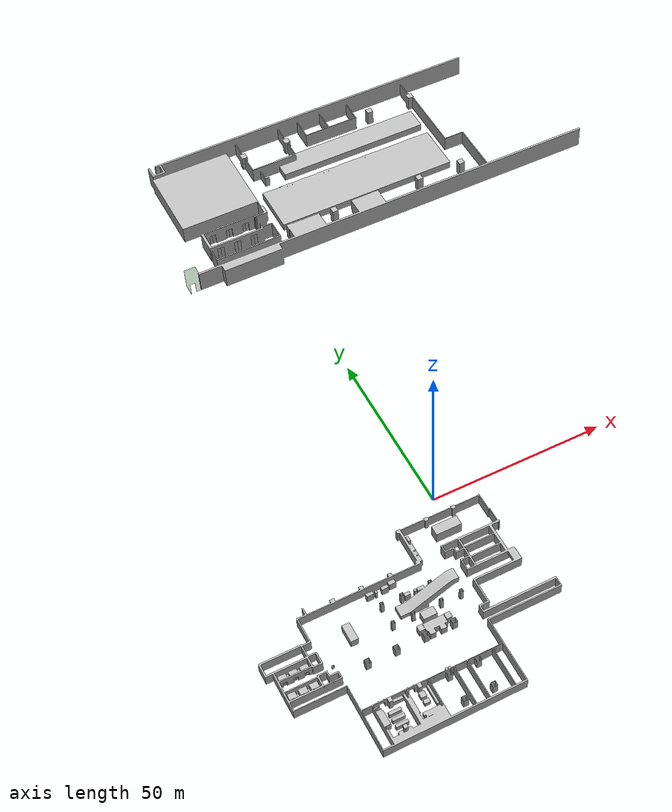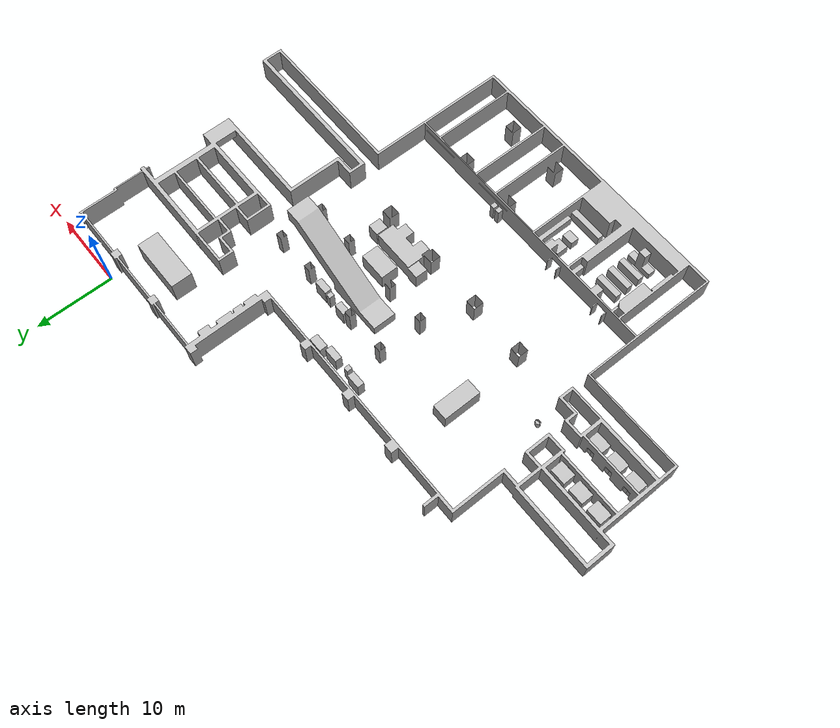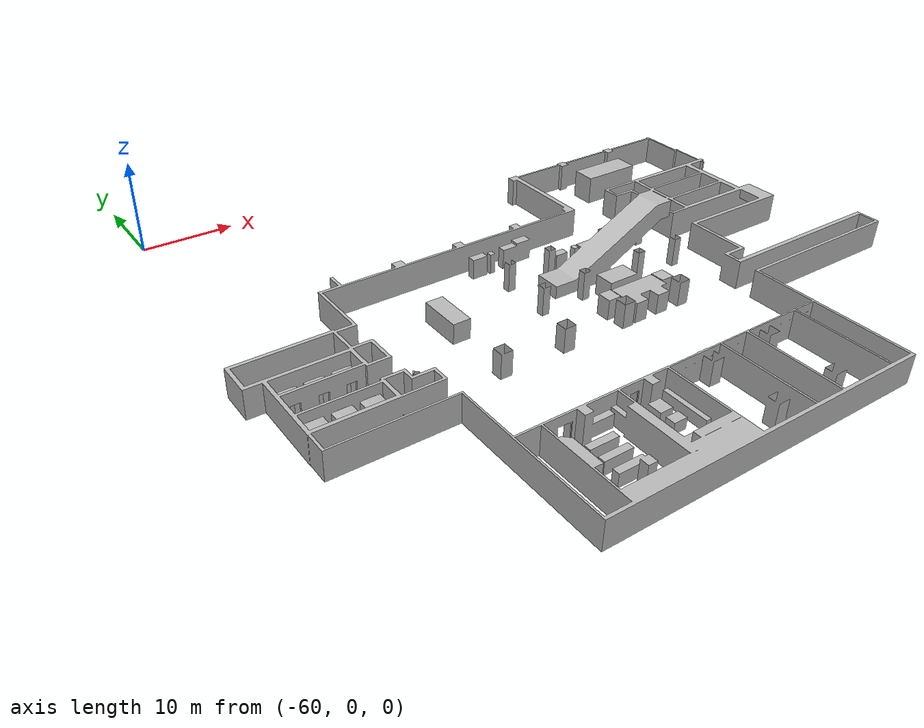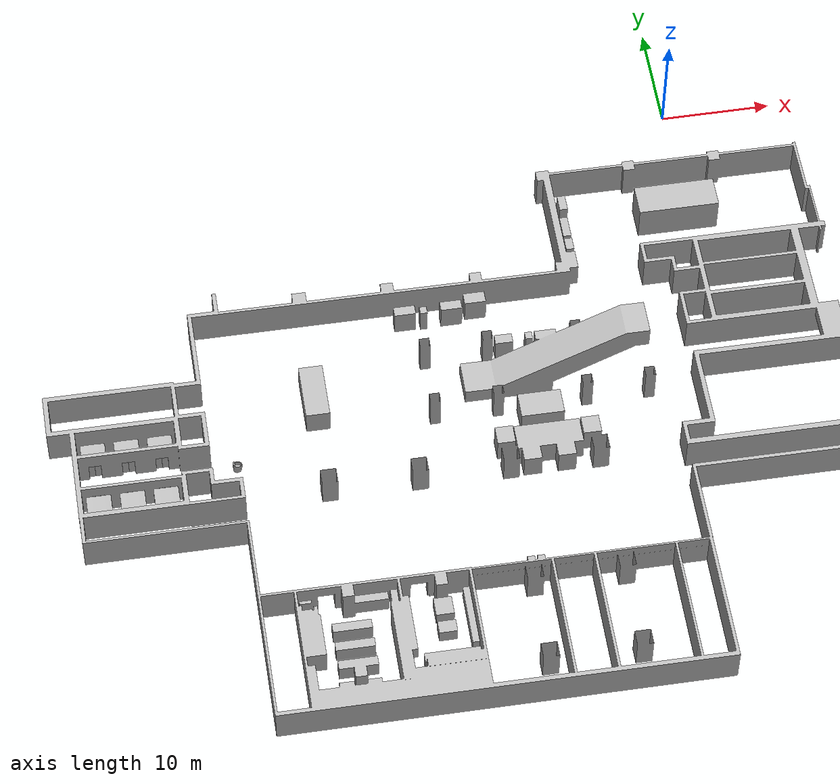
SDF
<?xml version="1.0" ?>
<sdf version="1.6">
<world name="lg_seocho_world">
  <gui>
    <camera name="user_camera">
      <pose>-47.37 -29.29 -4.5 0 0.523 0</pose>
    </camera>
  </gui>

  <spherical_coordinates>
    <surface_model>EARTH_WGS84</surface_model>
    <world_frame_orientation>ENU</world_frame_orientation>
    <latitude_deg>37.46105</latitude_deg>
    <longitude_deg>127.03418</longitude_deg>
    <elevation>40</elevation>
    <heading_deg>-47</heading_deg>
  </spherical_coordinates>

  <light name='sun' type='directional'>
    <cast_shadows>1</cast_shadows>
    <pose>0 0 500 0 -0 0</pose>
    <diffuse>0.9528302 0.9528302 0.9528302 1</diffuse>
    <direction>0 0 -1</direction>
  </light>

  <include>
    <uri>model://map_lg_seocho</uri>
  </include>

  <include>
    <name>cloi1</name>
    <uri>model://CLOi_porter</uri>
    <pose>-43.81 -28.77 -6.546 0 0 3.14</pose>
  </include>

</world>
</sdf>

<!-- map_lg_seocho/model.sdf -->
<sdf version="1.6">
<model name="SeochoTower">
  <static>true</static>

  <include>
    <name>B1F</name>
    <uri>model://seocho_B1F</uri>
  </include>

  <include>
    <name>25F</name>
    <uri>model://seocho_25F</uri>
  </include>

  <include>
    <name>Elevator_00</name>
    <pose>-50.38048 -26.93626 -6.61037 0 0 0</pose>
    <uri>model://seocho_EV</uri>
  </include>

  <include>
    <name>Elevator_01</name>
    <pose>-53.36258 -26.93626 -6.61037 0 0 0</pose>
    <uri>model://seocho_EV</uri>
  </include>

  <include>
    <name>Elevator_02</name>
    <pose>-56.34855 -26.93626 -6.61037 0 0 0</pose>
    <uri>model://seocho_EV</uri>
  </include>

  <include>
    <name>Elevator_03</name>
    <pose>-50.37298 -31.54849 -6.61037 0 0 -3.140000</pose>
    <uri>model://seocho_EV</uri>
  </include>

  <include>
    <name>Elevator_04</name>
    <pose>-53.35443 -31.54849 -6.61037 0 0 -3.140000</pose>
    <uri>model://seocho_EV</uri>
  </include>

  <include>
    <name>Elevator_05</name>
    <pose>-56.34433 -31.54849 -6.61037 0 0 -3.140000</pose>
    <uri>model://seocho_EV</uri>
  </include>

  <plugin name="ElevatorSystem" filename="libElevatorSystem.so">
    <system_name>ElevatorSystem_00</system_name>
    <elevator prefix_name="Elevator_" speed="30">
      <floor>floor_collision</floor>
      <doors speed="0.6" closing_timer="7.0">
        <inside open_offset="0.567">
          <door name="left">seocho_EV_door_L_link</door>
          <door name="right">seocho_EV_door_R_link</door>
        </inside>
        <outside open_offset="0.567">
          <door name="left">seocho_EV_out_doors_L_link</door>
          <door name="right">seocho_EV_out_doors_R_link</door>
        </outside>
      </doors>
    </elevator>
    <floors>
      <floor>
        <name>B1F</name>
        <height>-6.61037</height>
      </floor>
      <floor>
        <name>25F</name>
        <height>150.13362</height>
      </floor>
    </floors>
  </plugin>
</model>
</sdf>

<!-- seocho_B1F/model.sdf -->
<sdf version='1.6'>
<model name='seocho_B1F'>
  <static>1</static>
  <allow_auto_disable>1</allow_auto_disable>
  <link name='B1_body_link'>
    <collision name='collision'>
      <geometry>
        <mesh>
          <scale>0.1 0.1 0.1</scale>
          <uri>model://seocho_B1F/meshes/B1_collision.obj</uri>
        </mesh>
      </geometry>
    </collision>
      <collision name='floor_collision'>
        <geometry>
          <mesh>
            <scale>0.1 0.1 0.1</scale>
            <uri>model://seocho_B1F/meshes/B1_bottom_col.obj</uri>
          </mesh>
        </geometry>
        <surface>
          <friction>
            <ode>
              <mu>1</mu>
              <mu2>1</mu2>
              <fdir1>0 0 1</fdir1>
              <slip1>0.0</slip1>
              <slip2>0.0</slip2>
            </ode>
          </friction>
        </surface>
      </collision>
    <visual name='visual'>
      <geometry>
        <mesh>
          <scale>0.1 0.1 0.1</scale>
          <uri>model://seocho_B1F/meshes/B1_base.obj</uri>
        </mesh>
      </geometry>
      <material>
        <emissive>0.005 0.005 0.005 1</emissive>
      </material>
      <cast_shadows>0</cast_shadows>
    </visual>
  </link>
  <link name='seocho25_glass_link'>
    <visual name='visual'>
      <geometry>
        <mesh>
          <scale>0.1 0.1 0.1</scale>
          <uri>model://seocho_B1F/meshes/B1_glass.obj</uri>
        </mesh>
      </geometry>
      <material>
        <diffuse>0 0.4 0 0.3</diffuse>
      </material>
      <cast_shadows>0</cast_shadows>
    </visual>
  </link>

  <include>
    <name>EV_1_outside_door</name>
    <pose>-50.3762 -27.43527 -6.61125 0 0 0</pose>
    <uri>model://seocho_EV_out_doors</uri>
  </include>

  <include>
    <name>EV_2_outside_door</name>
    <pose>-53.3583 -27.43527 -6.61125 0 0 0</pose>
    <uri>model://seocho_EV_out_doors</uri>
  </include>

  <include>
    <name>EV_3_outside_door</name>
    <pose>-56.34427 -27.43527 -6.61125 0 0 0</pose>
    <uri>model://seocho_EV_out_doors</uri>
  </include>

  <include>
    <name>EV_4_outside_door</name>
    <pose>-50.377726 -31.04938 -6.61125 0 0 -3.140000</pose>
    <uri>model://seocho_EV_out_doors</uri>
  </include>

  <include>
    <name>EV_5_outside_door</name>
    <pose>-53.35871 -31.04938 -6.61125 0 0 -3.140000</pose>
    <uri>model://seocho_EV_out_doors</uri>
  </include>

  <include>
    <name>EV_6_outside_door</name>
    <pose>-56.34862 -31.04938 -6.61125 0 0 -3.140000</pose>
    <uri>model://seocho_EV_out_doors</uri>
  </include>

</model>
</sdf>

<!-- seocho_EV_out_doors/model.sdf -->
<sdf version='1.6'>
<model name='seocho_EV_out_doors'>
  <static>1</static>
  <allow_auto_disable>1</allow_auto_disable>
  <link name='seocho_EV_out_doors_L_link'>
    <collision name='collision'>
      <geometry>
        <mesh>
          <scale>0.1 0.1 0.1</scale>
          <uri>model://seocho_EV_out_doors/meshes/B1_EV_door_L_out_col.obj</uri>
        </mesh>
      </geometry>
    </collision>
    <visual name='visual'>
      <geometry>
        <mesh>
          <scale>0.1 0.1 0.1</scale>
          <uri>model://seocho_EV_out_doors/meshes/B1_EV_door_L_out.obj</uri>
        </mesh>
      </geometry>
      <material>
        <emissive>0.02 0.02 0.02 1</emissive>
      </material>
    </visual>
  </link>
  <link name='seocho_EV_out_doors_R_link'>
    <collision name='collision'>
      <geometry>
        <mesh>
          <scale>0.1 0.1 0.1</scale>
          <uri>model://seocho_EV_out_doors/meshes/B1_EV_door_R_out_col.obj</uri>
        </mesh>
      </geometry>
    </collision>
    <visual name='visual'>
      <geometry>
        <mesh>
          <scale>0.1 0.1 0.1</scale>
          <uri>model://seocho_EV_out_doors/meshes/B1_EV_door_R_out.obj</uri>
        </mesh>
      </geometry>
      <material>
        <emissive>0.02 0.02 0.02 1</emissive>
      </material>
    </visual>
  </link>
</model>
</sdf>

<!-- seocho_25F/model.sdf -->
<sdf version='1.6'>
<model name='seocho_25F'>
  <static>1</static>
  <allow_auto_disable>1</allow_auto_disable>
  <link name='seocho_25F_body_link'>
    <collision name='collision'>
      <geometry>
        <mesh>
          <scale>0.1 0.1 0.1</scale>
          <uri>model://seocho_25F/meshes/25F_base_col.obj</uri>
        </mesh>
      </geometry>
    </collision>
    <collision name='bottom_collision'>
      <geometry>
        <mesh>
          <scale>0.1 0.1 0.1</scale>
          <uri>model://seocho_25F/meshes/25F_bottom_col.obj</uri>
        </mesh>
      </geometry>
    </collision>
    <collision name='bottom_collision2'>
      <pose>-55 -29.25 150.13 0 0 0</pose>
      <geometry>
        <plane>
          <normal>0 0 1</normal>
          <size>14.5 3.625</size>
        </plane>
      </geometry>
      <surface>
        <friction>
          <ode>
            <mu>100</mu>
            <mu2>50</mu2>
            <fdir1>0 0 0</fdir1>
            <slip1>0</slip1>
            <slip2>0</slip2>
          </ode>
        </friction>
      </surface>
    </collision>
    <visual name='visual'>
      <geometry>
        <mesh>
          <scale>0.1 0.1 0.1</scale>
          <uri>model://seocho_25F/meshes/25F_base.obj</uri>
        </mesh>
      </geometry>
      <material>
        <emissive>0.005 0.005 0.005 1</emissive>
      </material>
      <cast_shadows>0</cast_shadows>
    </visual>
  </link>
  <link name='seocho_25_glass_link'>
    <visual name='visual'>
      <geometry>
        <mesh>
          <scale>0.1 0.1 0.1</scale>
          <uri>model://seocho_25F/meshes/25F_glass.obj</uri>
        </mesh>
      </geometry>
      <material>
        <diffuse>0 0.4 0 0.3</diffuse>
      </material>
      <cast_shadows>0</cast_shadows>
    </visual>
  </link>

  <include>
    <name>EV_1_outside_door</name>
    <pose>-50.3762 -27.43527 150.13362 0 0 0</pose>
    <uri>model://seocho_EV_out_doors</uri>
  </include>

  <include>
    <name>EV_2_outside_door</name>
    <pose>-53.3583 -27.43527 150.13362 0 0 0</pose>
    <uri>model://seocho_EV_out_doors</uri>
  </include>

  <include>
    <name>EV_3_outside_door</name>
    <pose>-56.34427 -27.43527 150.13362 0 0 0</pose>
    <uri>model://seocho_EV_out_doors</uri>
  </include>

  <include>
    <name>EV_4_outside_door</name>
    <pose>-50.377726 -31.04938 150.13362 0 0 -3.140000</pose>
    <uri>model://seocho_EV_out_doors</uri>
  </include>

  <include>
    <name>EV_5_outside_door</name>
    <pose>-53.35871 -31.04938 150.13362 0 0 -3.140000</pose>
    <uri>model://seocho_EV_out_doors</uri>
  </include>

  <include>
    <name>EV_6_outside_door</name>
    <pose>-56.34862 -31.04938 150.13362 0 0 -3.140000</pose>
    <uri>model://seocho_EV_out_doors</uri>
  </include>

</model>
</sdf>

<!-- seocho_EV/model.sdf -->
<sdf version='1.6'>
<model name='seocho_EV'>
  <allow_auto_disable>1</allow_auto_disable>
  <link name='floor'>
    <kinematic>1</kinematic>
    <gravity>0</gravity>

    <collision name='floor_collision'>
      <geometry>
        <mesh>
          <scale>0.1 0.1 0.1</scale>
          <uri>model://seocho_EV/meshes/EV_col.obj</uri>
        </mesh>
      </geometry>
    </collision>

    <visual name='floor_visual'>
      <geometry>
        <mesh>
          <scale>0.1 0.1 0.1</scale>
          <uri>model://seocho_EV/meshes/EV.obj</uri>
        </mesh>
      </geometry>
      <material>
        <emissive>0.02 0.02 0.02 1</emissive>
      </material>
    </visual>
  </link>

  <model name='door'>
    <static>1</static>
    <allow_auto_disable>1</allow_auto_disable>
    <pose>0.00428 -0.44789 -0.00088 0 0 0</pose>
    <link name='seocho_EV_door_L_link'>
      <collision name='collision'>
        <geometry>
          <mesh>
            <scale>0.1 0.1 0.1</scale>
            <uri>model://seocho_EV/meshes/EV_door_L_col.obj</uri>
          </mesh>
        </geometry>
      </collision>
      <visual name='visual'>
        <geometry>
          <mesh>
            <scale>0.1 0.1 0.1</scale>
            <uri>model://seocho_EV/meshes/EV_door_L_in.obj</uri>
          </mesh>
        </geometry>
        <material>
          <emissive>0.02 0.02 0.02 1</emissive>
        </material>
      </visual>
    </link>
    <link name='seocho_EV_door_R_link'>
      <collision name='collision'>
        <geometry>
          <mesh>
            <scale>0.1 0.1 0.1</scale>
            <uri>model://seocho_EV/meshes/EV_door_R_col.obj</uri>
          </mesh>
        </geometry>
      </collision>
      <visual name='visual'>
        <geometry>
          <mesh>
            <scale>0.1 0.1 0.1</scale>
            <uri>model://seocho_EV/meshes/EV_door_R_in.obj</uri>
          </mesh>
        </geometry>
        <material>
          <emissive>0.02 0.02 0.02 1</emissive>
        </material>
      </visual>
    </link>
  </model>
</model>
</sdf>

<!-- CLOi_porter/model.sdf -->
<sdf version='1.6'>
<model name='CLOi_porter' canonical_link="link_MainBody">
  <link name='link_MainBody'>
   <inertial>
      <mass>59</mass>
      <inertia>
        <ixx>0.7</ixx>
        <ixy>0</ixy>
        <ixz>0</ixz>
        <iyy>0.7</iyy>
        <iyz>0</iyz>
        <izz>2</izz>
      </inertia>
      <pose>0 0 0.25 0 -0 0</pose>
    </inertial>

    <gravity>1</gravity>
    <self_collide>0</self_collide>
    <kinematic>0</kinematic>
    <enable_wind>0</enable_wind>

    <visual name='visual_main_base'>
      <geometry>
        <mesh>
          <uri>model://CLOi_porter/meshes/CLOi_porter.obj</uri>
          <scale>1 1 1</scale>
        </mesh>
      </geometry>
      <material>
        <emissive>0.005 0.005 0.005 1</emissive>
      </material>
      <transparency>0</transparency>
      <cast_shadows>0</cast_shadows>
    </visual>

    <collision name='collision_main_body'>
      <max_contacts>2</max_contacts>
      <geometry>
        <mesh>
          <uri>model://CLOi_porter/meshes/main_body_collision.stl</uri>
          <scale>1 1 1</scale>
        </mesh>
      </geometry>
      <surface>
        <friction>
          <ode>
            <mu>0.85</mu>
            <mu2>0.80</mu2>
            <fdir1>0 0 0</fdir1>
            <slip1>0.01</slip1>
            <slip2>0.01</slip2>
          </ode>
        </friction>
        <contact>
          <poissons_ratio>0.39</poissons_ratio>
          <elastic_modulus>0.39</elastic_modulus>
          <ode>
            <soft_cfm>0.05</soft_cfm>
            <soft_erp>0.40</soft_erp>
            <kp>1e+12</kp>
            <kd>0.01</kd>
            <min_depth>0.001</min_depth>
          </ode>
        </contact>
      </surface>
    </collision>
    <collision name='collision_cart'>
      <max_contacts>2</max_contacts>
      <geometry>
        <mesh>
          <uri>model://CLOi_porter/meshes/cart_collision.stl</uri>
          <scale>1 1 1</scale>
        </mesh>
      </geometry>
    </collision>
    <collision name='collision_neck'>
      <max_contacts>2</max_contacts>
      <geometry>
        <mesh>
          <uri>model://CLOi_porter/meshes/neck_collision.stl</uri>
          <scale>1 1 1</scale>
        </mesh>
      </geometry>
    </collision>
    <collision name='collision_head'>
      <max_contacts>2</max_contacts>
      <geometry>
        <mesh>
          <uri>model://CLOi_porter/meshes/head_collision.stl</uri>
          <scale>1 1 1</scale>
        </mesh>
      </geometry>
    </collision>

    <battery name="linear_battery">
      <voltage>42</voltage>
    </battery>
  </link>

  <include>
    <uri>model://robot_wheel_suspension</uri>
    <name>SuspensionLeft</name>
    <pose>0 0.158 0.09 0 0 0</pose>
  </include>
  <include>
    <uri>model://CLOi_porter_wheel</uri>
    <name>wheel_left</name>
    <pose>0.001 0.225 0.08 -1.5707962 0 0</pose>
  </include>
  <joint name="Joint_link_MainBody_SuspLeft" type="prismatic">
    <parent>link_MainBody</parent>
    <child>SuspensionLeft::link</child>
    <axis>
      <xyz>0 0 1</xyz>
      <limit>
        <upper>0.04</upper>
        <lower>0.0</lower>
        <effort>300</effort>
      </limit>
      <dynamics>
        <friction>0.1</friction>
        <damping>320</damping>
        <spring_stiffness>8200</spring_stiffness>
      </dynamics>
    </axis>
  </joint>
  <joint name='link_MainBody_wheel_left' type='revolute'>
    <parent>SuspensionLeft::link</parent>
    <child>wheel_left::link</child>
    <axis>
      <xyz>0 0 1</xyz>
      <limit>
        <effort>50</effort>
      </limit>
      <dynamics>
        <friction>0.001</friction>
        <damping>12</damping>
      </dynamics>
    </axis>
  </joint>

  <include>
    <uri>model://robot_wheel_suspension</uri>
    <name>SuspensionRight</name>
    <pose>0 -0.158 0.09 0 0 0</pose>
  </include>
  <include>
    <uri>model://CLOi_porter_wheel</uri>
    <name>wheel_right</name>
    <pose>0.001 -0.225 0.08 1.5707962 0 0</pose>
  </include>
  <joint name="Joint_link_MainBody_SuspRight" type="prismatic">
    <parent>link_MainBody</parent>
    <child>SuspensionRight::link</child>
    <axis>
      <xyz>0 0 1</xyz>
      <limit>
        <upper>0.04</upper>
        <lower>0.0</lower>
        <effort>300</effort>
      </limit>
      <dynamics>
        <friction>0.1</friction>
        <damping>320</damping>
        <spring_stiffness>8200</spring_stiffness>
      </dynamics>
    </axis>
  </joint>
  <joint name='link_MainBody_wheel_right' type='revolute'>
    <parent>SuspensionRight::link</parent>
    <child>wheel_right::link</child>
    <axis>
      <xyz>0 0 -1</xyz>
      <limit>
        <effort>50</effort>
      </limit>
      <dynamics>
        <friction>0.001</friction>
        <damping>12</damping>
      </dynamics>
    </axis>
  </joint>

  <include>
    <uri>model://CLOi_porter_caster</uri>
    <name>FL_caster</name>
    <pose>0.22 0.1 0.066 0 0 0</pose>
  </include>
  <joint name='link_MainBody_Caster_FL' type='revolute'>
    <parent>link_MainBody</parent>
    <child>FL_caster::link</child>
    <axis>
      <xyz>0 0 1</xyz>
      <dynamics>
        <friction>0.3</friction>
      </dynamics>
    </axis>
  </joint>

  <include>
    <uri>model://CLOi_porter_caster</uri>
    <name>FR_caster</name>
    <pose>0.22 -0.1 0.066 0 0 0</pose>
  </include>
  <joint name='link_MainBody_Caster_FR' type='revolute'>
    <parent>link_MainBody</parent>
    <child>FR_caster::link</child>
    <axis>
      <xyz>0 0 1</xyz>
      <dynamics>
        <friction>0.3</friction>
      </dynamics>
    </axis>
  </joint>

  <include>
    <uri>model://CLOi_porter_caster</uri>
    <name>RL_caster</name>
    <pose>-0.220 0.1 0.066 0 0 0</pose>
  </include>
  <joint name='link_MainBody_Caster_RL' type='revolute'>
    <parent>link_MainBody</parent>
    <child>RL_caster::link</child>
    <axis>
      <xyz>0 0 1</xyz>
      <dynamics>
        <friction>0.3</friction>
      </dynamics>
    </axis>
  </joint>

  <include>
    <uri>model://CLOi_porter_caster</uri>
    <name>RR_caster</name>
    <pose>-0.220 -0.1 0.066 0 0 0</pose>
  </include>
  <joint name='link_MainBody_Caster_RR' type='revolute'>
    <parent>link_MainBody</parent>
    <child>RR_caster::link</child>
    <axis>
      <xyz>0 0 1</xyz>
      <dynamics>
        <friction>0.3</friction>
      </dynamics>
    </axis>
  </joint>

  <include>
    <uri>model://robot_camera</uri>
    <name>camera</name>
    <pose>0.344 0 1.0141 0 0 0</pose>
  </include>
  <joint name='link_MainBody_JOINT_camera_front' type='fixed'>
    <parent>link_MainBody</parent>
    <child>camera::link</child>
  </joint>

  <include>
    <uri>model://robot_depthcam</uri>
    <name>depthcamera</name>
    <pose>0.344 0 1.0141 0 0 0</pose>
  </include>
  <joint name='link_MainBody_JOINT_depthcamera_front' type='fixed'>
    <parent>link_MainBody</parent>
    <child>depthcamera::link</child>
  </joint>

  <include>
    <uri>model://robot_IMU</uri>
    <name>imu</name>
    <pose>0 0 0.19 0 0 0</pose>
  </include>
  <joint name='link_MainBody_JOINT_imu' type='fixed'>
    <parent>link_MainBody</parent>
    <child>imu::link_imu</child>
  </joint>

  <include>
    <uri>model://hokuyo_UAM05LPT301_gpu</uri>
    <name>lidar</name>
    <pose>0.270000 0 0.1125 0 0 0</pose>
  </include>
  <joint name='link_MainBody_JOINT_lidar' type='fixed'>
    <parent>link_MainBody</parent>
    <child>lidar::link</child>
  </joint>

  <include>
    <uri>model://robot_GPS</uri>
    <name>gps</name>
    <pose>0 0 0.21 0 0 0</pose>
  </include>
  <joint name='Joint_GPS' type='fixed'>
    <parent>link_MainBody</parent>
    <child>gps::link</child>
  </joint>

  <plugin name='MicomRobotControl' filename='libMicomPlugin.so'>
    <imu>imu</imu>
    <uss>
    </uss>
    <ir>
    </ir>
    <magnet>
    </magnet>
    <bumper>
    </bumper>
    <wheel>
      <PID>
        <kp>1.1</kp>
        <ki>0.01</ki>
        <kd>0</kd>
      </PID>
      <separation>0.475</separation>
      <radius>0.1</radius>
      <location type="left">wheel_left</location>
      <location type="right">wheel_right</location>
    </wheel>
    <update_rate>50</update_rate>
    <ros2>
      <static_transforms>
        <link parent_frame_id="base_link">link_imu</link>
        <link parent_frame_id="base_link">SuspensionLeft::link</link>
        <link parent_frame_id="base_link">SuspensionRight::link</link>
      </static_transforms>
      <transforms>
        <link parent_frame_id="SuspensionLeft::link">wheel_left::link</link>
        <link parent_frame_id="SuspensionRight::link">wheel_right::link</link>
      </transforms>
    </ros2>
  </plugin>
</model>
</sdf>

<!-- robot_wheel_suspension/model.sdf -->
<sdf version='1.6'>
<model name='RobotWheelSuspension'>
  <link name="link">
    <inertial>
      <mass>2.0</mass>
      <inertia>
        <ixx>0.00172717</ixx>
        <ixy>0</ixy>
        <ixz>0</ixz>
        <iyy>0.00172717</iyy>
        <iyz>0</iyz>
        <izz>0.012100</izz>
      </inertia>
    </inertial>

    <gravity>1</gravity>

    <collision name="collision">
      <geometry>
        <cylinder>
          <radius>0.013</radius>
          <length>0.10</length>
        </cylinder>
      </geometry>
    </collision>
    <visual name="visual">
      <geometry>
        <cylinder>
          <radius>0.013</radius>
          <length>0.10</length>
        </cylinder>
      </geometry>
      <material>
        <ambient>0.09 0.09 0.09 1</ambient>
        <diffuse>0.95 0.9 0.85 1</diffuse>
        <specular>0.95 0.9 0.85 1</specular>
        <emissive>0.3 0.3 0.3 1</emissive>
      </material>
    </visual>
  </link>
</model>
</sdf>

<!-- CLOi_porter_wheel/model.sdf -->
<sdf version='1.6'>
<model name='CLOIPorterWheel'>
  <link name='link'>
    <inertial>
      <mass>1.5</mass>
      <inertia>
        <ixx>0.00216667</ixx>
        <ixy>0</ixy>
        <ixz>0</ixz>
        <iyy>0.00216667</iyy>
        <iyz>0</iyz>
        <izz>0.00400000</izz>
      </inertia>
    </inertial>

    <gravity>1</gravity>
    <self_collide>0</self_collide>
    <kinematic>0</kinematic>
    <enable_wind>0</enable_wind>

    <visual name='visual'>
      <geometry>
        <mesh>
          <uri>model://CLOi_porter_wheel/meshes/porter_wheel.stl</uri>
        </mesh>
      </geometry>
      <material>
        <lighting>1</lighting>
        <ambient>0.5 0.5 0.5 1</ambient>
        <diffuse>0.1 0.1 0.1 1</diffuse>
        <specular>0.8 0.8 0.8 1</specular>
        <emissive>0.02 0.02 0.02 1</emissive>
      </material>
      <cast_shadows>0</cast_shadows>
      <transparency>0</transparency>
    </visual>

    <collision name='collision_wheel'>
      <laser_retro>0</laser_retro>
      <max_contacts>2</max_contacts>
      <geometry>
        <cylinder>
          <radius>0.1</radius>
          <length>0.05</length>
        </cylinder>
      </geometry>
      <surface>
        <friction>
          <ode>
            <mu>0.99</mu>
            <fdir1>0 0 1</fdir1>
          </ode>
        </friction>
        <bounce>
          <restitution_coefficient>0.8</restitution_coefficient>
        </bounce>
        <contact>
          <poissons_ratio>0.49</poissons_ratio>
          <elastic_modulus>0.46</elastic_modulus>
          <ode>
            <max_vel>0.01</max_vel>
            <min_depth>0.0001</min_depth>
            <kp>3e6</kp>
            <kd>1.00000</kd>
            <soft_cfm>0.000010</soft_cfm>
            <soft_erp>0.250000</soft_erp>
          </ode>
        </contact>
      </surface>
    </collision>
  </link>
</model>
</sdf>

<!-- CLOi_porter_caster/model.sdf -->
<sdf version='1.6'>
<model name='CLOIPorterCaster'>
  <link name='link'>
    <inertial>
      <mass>0.45</mass>
      <inertia>
        <ixx>0.00000833</ixx>
        <ixy>0</ixy>
        <ixz>0</ixz>
        <iyy>0.00000833</iyy>
        <iyz>0</iyz>
        <izz>0.00000833</izz>
      </inertia>
      <pose>0.0 0.0 0.03 -0 0.0 0.0</pose>
    </inertial>

    <gravity>1</gravity>
    <self_collide>0</self_collide>
    <kinematic>0</kinematic>
    <enable_wind>0</enable_wind>

    <visual name='visual'>
      <geometry>
        <mesh>
          <uri>model://CLOi_porter_caster/meshes/caster_hinge.stl</uri>
        </mesh>
      </geometry>
      <material>
        <lighting>1</lighting>
        <ambient>1.0 1.0 1.0 1</ambient>
        <diffuse>0.1 0.1 0.1 1</diffuse>
        <specular>0.2 0.2 0.2 1</specular>
        <emissive>0.01 0.01 0.01 1</emissive>
      </material>
      <cast_shadows>0</cast_shadows>
      <transparency>0</transparency>
    </visual>

    <collision name='collision_caster_wheel'>
      <max_contacts>0</max_contacts>
      <geometry>
        <mesh>
          <uri>model://CLOi_porter_caster/meshes/caster_hinge_collision.stl</uri>
        </mesh>
      </geometry>
      <surface>
        <friction>
          <ode>
            <mu>0.0</mu>
            <mu2>0.0</mu2>
            <fdir1>0 0 1</fdir1>
            <slip1>0.1</slip1>
            <slip2>0.1</slip2>
          </ode>
        </friction>
      </surface>
    </collision>
  </link>

  <link name="link_caster_wheel">
    <pose>0.04 0 -0.026 1.5708 0 0</pose>
    <inertial>
      <mass>0.45</mass>
      <inertia>
        <ixx>0.00032067</ixx>
        <ixy>0</ixy>
        <ixz>0</ixz>
        <iyy>0.00032067</iyy>
        <iyz>0</iyz>
        <izz>0.00036100</izz>
      </inertia>
    </inertial>

    <gravity>1</gravity>
    <visual name='visual'>
      <geometry>
        <mesh>
          <uri>model://CLOi_porter_caster/meshes/caster_wheel.stl</uri>
        </mesh>
      </geometry>
      <material>
        <lighting>1</lighting>
        <ambient>0.95 0.9 0.92 1</ambient>
        <diffuse>0.1 0.1 0.1 1</diffuse>
        <specular>0.2 0.2 0.2 1</specular>
        <emissive>0.01 0.01 0.01 1</emissive>
      </material>
      <cast_shadows>0</cast_shadows>
      <transparency>0</transparency>
    </visual>

    <collision name='collision_caster_wheel'>
      <max_contacts>2</max_contacts>
      <geometry>
        <cylinder>
          <radius>0.04</radius>
          <length>0.03</length>
        </cylinder>
      </geometry>
      <surface>
        <friction>
          <ode>
            <mu>0.05</mu>
            <fdir1>0 0 1</fdir1>
            <slip1>0.1</slip1>
            <slip2>0.1</slip2>
          </ode>
        </friction>
        <contact>
          <poissons_ratio>0.40</poissons_ratio>
          <elastic_modulus>0.40</elastic_modulus>
        </contact>
        <bounce>
          <restitution_coefficient>1</restitution_coefficient>
          <threshold>100000</threshold>
        </bounce>
      </surface>
    </collision>
  </link>
  <joint name='link_CLOi_porter_caster_wheel_joint' type='revolute'>
    <parent>link</parent>
    <child>link_caster_wheel</child>
    <axis>
      <xyz>0 0 1</xyz>
      <dynamics>
        <friction>0.005</friction>
      </dynamics>
    </axis>
  </joint>
</model>
</sdf>

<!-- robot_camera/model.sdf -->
<sdf version='1.6'>
<model name='camera'>
  <static>0</static>
  <allow_auto_disable>1</allow_auto_disable>

  <link name='link'>
    <self_collide>0</self_collide>
    <enable_wind>0</enable_wind>
    <kinematic>0</kinematic>

    <inertial>
      <mass>0.072</mass>
      <inertia>
        <ixx>0.000007</ixx>
        <ixy>0</ixy>
        <ixz>0</ixz>
        <iyy>0.000007</iyy>
        <iyz>0</iyz>
        <izz>0.000007</izz>
      </inertia>
    </inertial>

    <collision name='collision_camera'>
      <geometry>
        <box>
          <size>0.030000 0.100000 0.025000</size>
        </box>
      </geometry>
      <max_contacts>1</max_contacts>
    </collision>

    <visual name='visual_camera'>
      <geometry>
        <box>
          <size>0.030000 0.100000 0.025000</size>
        </box>
      </geometry>
    </visual>

    <sensor name='camera' type='camera'>
      <camera>
        <save enabled="False">
          <path>/home/yg/Pictures/cam</path>
        </save>
        <horizontal_fov>2.1</horizontal_fov>
        <image>
          <width>640</width>
          <height>480</height>
          <format>R8G8B8</format>
        </image>
        <clip>
          <near>0.054</near>
          <far>50</far>
        </clip>
        <noise>
          <type>gaussian</type>
          <mean>0.0</mean>
          <stddev>0.00</stddev>
        </noise>
        <distortion>
          <k1>0.10369</k1>
          <k2>0.10328</k2>
        </distortion>
      </camera>

      <always_on>1</always_on>
      <update_rate>10</update_rate>
      <visualize>0</visualize>
      <plugin name='CameraPlugin' filename='libCameraPlugin.so'>
        <ros2>
          <topic_name>color</topic_name>
          <frame_id>camera_link</frame_id>
        </ros2>
      </plugin>
    </sensor>
  </link>
</model>
</sdf>

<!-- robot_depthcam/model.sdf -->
<sdf version='1.6'>
<model name='depth_camera'>
  <static>0</static>
  <allow_auto_disable>1</allow_auto_disable>

  <link name='link'>
    <self_collide>0</self_collide>
    <enable_wind>0</enable_wind>
    <kinematic>0</kinematic>

    <inertial>
      <mass>0.8</mass>
      <inertia>
        <ixx>0.00133333</ixx>
        <ixy>0</ixy>
        <ixz>0</ixz>
        <iyy>0.00133333</iyy>
        <iyz>0</iyz>
        <izz>0.00133333</izz>
      </inertia>
    </inertial>

    <collision name='collision_camera'>
      <geometry>
        <box>
          <size>0.030000 0.100000 0.025000</size>
        </box>
      </geometry>
      <max_contacts>1</max_contacts>
    </collision>

    <visual name='visual_camera'>
      <geometry>
        <box>
          <size>0.030000 0.100000 0.025000</size>
        </box>
      </geometry>
    </visual>

    <sensor name='depth_camera' type='depth'>
      <camera>
        <save enabled="False">
          <path>/home/yg/Pictures/cam</path>
        </save>
        <horizontal_fov>0.98</horizontal_fov>
        <image>
          <width>320</width>
          <height>240</height>
        </image>
        <clip>
          <near>0.02</near>
          <far>2.1</far>
        </clip>
      </camera>

      <always_on>1</always_on>
      <update_rate>10</update_rate>
      <visualize>1</visualize>

      <plugin name='DepthCameraPlugin' filename='libCameraPlugin.so'>
        <ros2>
          <topic_name>depth</topic_name>
          <frame_id>depthcam_link</frame_id>
        </ros2>
      </plugin>
    </sensor>
  </link>
</model>
</sdf>

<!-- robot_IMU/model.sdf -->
<sdf version='1.6'>
<model name='IMU'>
  <allow_auto_disable>1</allow_auto_disable>
  <link name='link_imu'>
    <inertial>
      <mass>0.002</mass>
      <inertia>
        <ixx>0.00000003</ixx>
        <ixy>0</ixy>
        <ixz>0</ixz>
        <iyy>0.00000003</iyy>
        <iyz>0</iyz>
        <izz>0.00000003</izz>
      </inertia>
    </inertial>

    <gravity>0</gravity>
    <self_collide>0</self_collide>
    <kinematic>0</kinematic>
    <enable_wind>0</enable_wind>

    <visual name='visual'>
      <geometry>
        <box>
          <size>0.01 0.01 0.01</size>
        </box>
      </geometry>
      <material>
        <lighting>1</lighting>
        <ambient>0.3 0.3 0.3 1</ambient>
        <diffuse>0.7 0.7 0.7 1</diffuse>
        <specular>0.01 0.01 0.01 1</specular>
        <emissive>0 0 0 1</emissive>
      </material>
      <transparency>0</transparency>
      <cast_shadows>0</cast_shadows>
    </visual>

    <sensor name='imu_sensor' type='imu'>
      <imu>
        <angular_velocity>
          <x>
            <noise type='none'/>
          </x>
          <y>
            <noise type='none'/>
          </y>
          <z>
            <noise type='none'/>
          </z>
        </angular_velocity>
        <linear_acceleration>
          <x>
            <noise type='none'/>
          </x>
          <y>
            <noise type='none'/>
          </y>
          <z>
            <noise type='none'/>
          </z>
        </linear_acceleration>
      </imu>
      <always_on>1</always_on>
      <update_rate>30</update_rate>
    </sensor>
  </link>
</model>
</sdf>

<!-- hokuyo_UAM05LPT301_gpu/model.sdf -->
<sdf version='1.6'>
<model name="hokuyo_UAM05LPT301_gpu">
  <static>0</static>
  <link name="link">
    <inertial>
      <mass>0.8</mass>
      <inertia>
        <ixx>0.00043333</ixx>
        <ixy>0</ixy>
        <ixz>0</ixz>
        <iyy>0.00043333</iyy>
        <iyz>0</iyz>
        <izz>0.00065333</izz>
      </inertia>
    </inertial>
    <self_collide>0</self_collide>
    <enable_wind>0</enable_wind>
    <kinematic>0</kinematic>

    <visual name="visual">
      <geometry>
        <mesh>
          <uri>model://hokuyo_UAM05LPT301_gpu/meshes/uam05lp.stl</uri>
          <scale>1 1 1</scale>
        </mesh>
      </geometry>
      <material>
        <lighting>1</lighting>
        <ambient>0.05 0.05 0.05 1</ambient>
        <diffuse>0.5 0.5 0.2 1</diffuse>
        <specular>0.5 0.5 0.1 1</specular>
        <emissive>0.02 0.02 0.02 1</emissive>
      </material>
    </visual>

    <collision name="collision">
      <laser_retro>0</laser_retro>
      <max_contacts>1</max_contacts>
      <pose>0 0 0.02 0 -0 0</pose>
      <geometry>
        <box>
          <size>0.07 0.07 0.04</size>
        </box>
      </geometry>
      <surface>
        <friction>
          <ode>
            <mu>0.9</mu>
            <mu2>0.8</mu2>
            <fdir1>0 0 0</fdir1>
            <slip1>0.0</slip1>
            <slip2>0.0</slip2>
          </ode>
        </friction>
        <contact>
          <poissons_ratio>0.33</poissons_ratio>
          <elastic_modulus>0.33</elastic_modulus>
          <ode>
            <soft_cfm>0.0</soft_cfm>
            <soft_erp>0.2</soft_erp>
            <kp>1e+12</kp>
            <kd>0.00</kd>
            <max_vel>0.01</max_vel>
            <min_depth>0.001</min_depth>
          </ode>
        </contact>
      </surface>
    </collision>

    <sensor name="hokuyo_laser" type="gpu_lidar">
      <pose>0 0 0.070 0 -0 0</pose>
      <lidar>
        <scan>
          <horizontal>
            <samples>1081</samples>
            <resolution>1</resolution>
            <min_angle>-2.35619</min_angle>
            <max_angle>+2.35619</max_angle>
          </horizontal>
        </scan>
        <range>
          <min>0.03</min>
          <max>20</max>
          <resolution>0.004363</resolution><!-- 0.25 deg -->
        </range>
      </lidar>
      <always_on>1</always_on>
      <update_rate>33.33333</update_rate>
      <visualize>false</visualize>

      <plugin name="LaserPlugin" filename="libLaserPlugin.so" >
        <ros2>
          <topic_name>scan</topic_name>
          <frame_id>base_scan</frame_id>
        </ros2>
        <output_type>LaserScan</output_type>
        <intensity>false</intensity>
        <filter>
          <angle>
            <horizontal>
              <lower>-1.845000</lower>
              <upper>1.845000</upper>
            </horizontal>
          </angle>
        </filter>
      </plugin>
    </sensor>
  </link>
</model>
</sdf>

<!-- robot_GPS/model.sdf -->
<sdf version='1.6'>
<model name='GPS'>
  <allow_auto_disable>1</allow_auto_disable>
  <link name='link'>
    <inertial>
      <mass>0.002</mass>
      <inertia>
        <ixx>0.00000003</ixx>
        <ixy>0</ixy>
        <ixz>0</ixz>
        <iyy>0.00000003</iyy>
        <iyz>0</iyz>
        <izz>0.00000003</izz>
      </inertia>
    </inertial>

    <gravity>0</gravity>
    <self_collide>0</self_collide>
    <kinematic>0</kinematic>
    <enable_wind>0</enable_wind>

    <visual name='visual'>
      <geometry>
        <box>
          <size>0.01 0.01 0.01</size>
        </box>
      </geometry>
      <material>
        <lighting>1</lighting>
        <ambient>0.3 0.3 0.3 1</ambient>
        <diffuse>0.7 0.7 0.7 1</diffuse>
        <specular>0.01 0.01 0.01 1</specular>
        <emissive>0 0 0 1</emissive>
      </material>
      <transparency>0</transparency>
      <cast_shadows>0</cast_shadows>
    </visual>

    <sensor name='gps_sensor' type='gps'>
      <always_on>1</always_on>
      <update_rate>10.000000</update_rate>
      <gps>
        <position_sensing>
          <horizontal>
          </horizontal>
          <vertical>
          </vertical>
        </position_sensing>
        <velocity_sensing>
          <horizontal>
          </horizontal>
          <vertical>
          </vertical>
        </velocity_sensing>
      </gps>
      <plugin name='GpsPlugin' filename='libGpsPlugin.so'>
        <ros2>
          <topic_name>navsatfix</topic_name>
          <frame_id>gps_link</frame_id>
        </ros2>
      </plugin>
    </sensor>
  </link>
</model>
</sdf>
